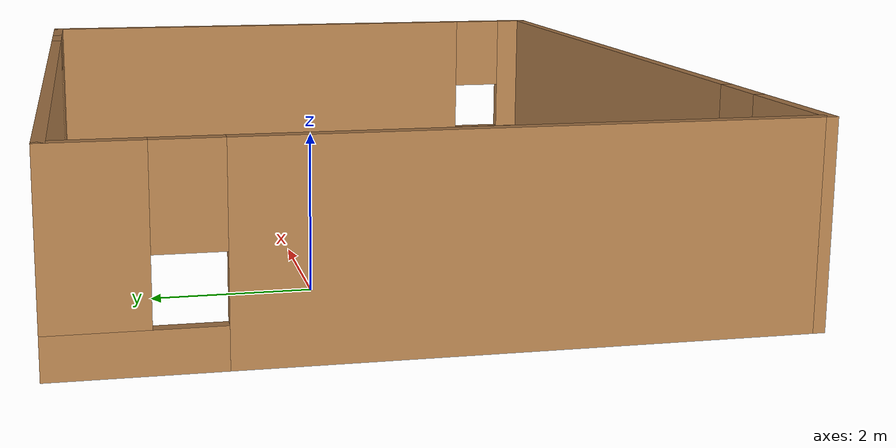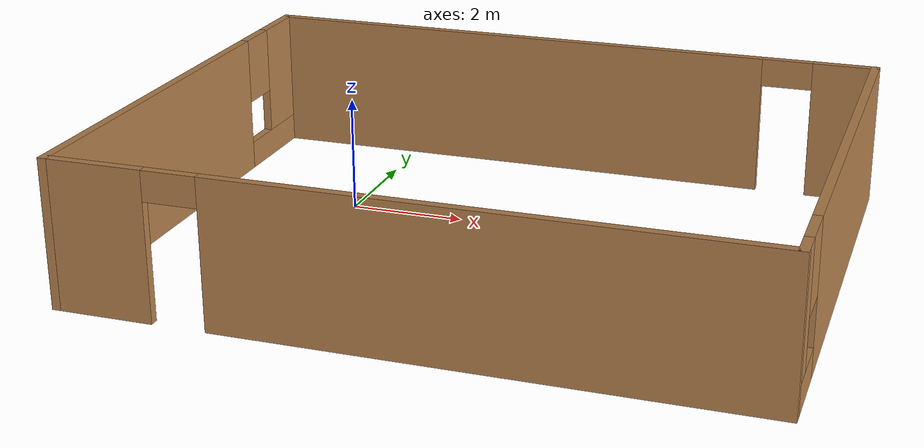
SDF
<?xml version='1.0'?>
<sdf version='1.7'>
  <model name='house'>
    <pose>2.975 -1.12 0 0 -0 0</pose>
    <link name='Wall_0'>
      <pose>-5.675 -0 0 0 -0 1.5708</pose>
      <visual name='Wall_0_Visual_0'>
        <pose>-0.979064 0 1.25 0 -0 0</pose>
        <geometry>
          <box>
            <size>6.79187 0.15 2.5</size>
          </box>
        </geometry>
        <material>
          <script>
            <uri>file://media/materials/scripts/gazebo.material</uri>
            <name>Gazebo/Wood</name>
          </script>
          <ambient>1 1 1 1</ambient>
        </material>
        <meta>
          <layer>0</layer>
        </meta>
      </visual>
      <collision name='Wall_0_Collision_0'>
        <geometry>
          <box>
            <size>6.79187 0.15 2.5</size>
          </box>
        </geometry>
        <pose>-0.979064 0 1.25 0 -0 0</pose>
      </collision>
      <visual name='Wall_0_Visual_1'>
        <pose>3.39594 0 0.25 0 -0 0</pose>
        <geometry>
          <box>
            <size>1.95813 0.15 0.5</size>
          </box>
        </geometry>
        <material>
          <script>
            <uri>file://media/materials/scripts/gazebo.material</uri>
            <name>Gazebo/Wood</name>
          </script>
          <ambient>1 1 1 1</ambient>
        </material>
        <meta>
          <layer>0</layer>
        </meta>
      </visual>
      <collision name='Wall_0_Collision_1'>
        <geometry>
          <box>
            <size>1.95813 0.15 0.5</size>
          </box>
        </geometry>
        <pose>3.39594 0 0.25 0 -0 0</pose>
      </collision>
      <visual name='Wall_0_Visual_2'>
        <pose>3.79594 0 1.5 0 -0 0</pose>
        <geometry>
          <box>
            <size>1.15813 0.15 2</size>
          </box>
        </geometry>
        <material>
          <script>
            <uri>file://media/materials/scripts/gazebo.material</uri>
            <name>Gazebo/Wood</name>
          </script>
          <ambient>1 1 1 1</ambient>
        </material>
        <meta>
          <layer>0</layer>
        </meta>
      </visual>
      <collision name='Wall_0_Collision_2'>
        <geometry>
          <box>
            <size>1.15813 0.15 2</size>
          </box>
        </geometry>
        <pose>3.79594 0 1.5 0 -0 0</pose>
      </collision>
      <visual name='Wall_0_Visual_3'>
        <pose>2.81687 0 1.9 0 -0 0</pose>
        <geometry>
          <box>
            <size>0.8 0.15 1.2</size>
          </box>
        </geometry>
        <material>
          <script>
            <uri>file://media/materials/scripts/gazebo.material</uri>
            <name>Gazebo/Wood</name>
          </script>
          <ambient>1 1 1 1</ambient>
        </material>
        <meta>
          <layer>0</layer>
        </meta>
      </visual>
      <collision name='Wall_0_Collision_3'>
        <geometry>
          <box>
            <size>0.8 0.15 1.2</size>
          </box>
        </geometry>
        <pose>2.81687 0 1.9 0 -0 0</pose>
      </collision>
    </link>
    <link name='Wall_1'>
      <pose>0 4.3 0 0 -0 0</pose>
      <visual name='Wall_1_Visual_0'>
        <pose>-1.03034 0 1.25 0 -0 0</pose>
        <geometry>
          <box>
            <size>9.43931 0.15 2.5</size>
          </box>
        </geometry>
        <material>
          <script>
            <uri>file://media/materials/scripts/gazebo.material</uri>
            <name>Gazebo/Wood</name>
          </script>
          <ambient>1 1 1 1</ambient>
        </material>
        <meta>
          <layer>0</layer>
        </meta>
      </visual>
      <collision name='Wall_1_Collision_0'>
        <geometry>
          <box>
            <size>9.43931 0.15 2.5</size>
          </box>
        </geometry>
        <pose>-1.03034 0 1.25 0 -0 0</pose>
      </collision>
      <visual name='Wall_1_Visual_1'>
        <pose>5.16966 0 1.25 0 -0 0</pose>
        <geometry>
          <box>
            <size>1.16069 0.15 2.5</size>
          </box>
        </geometry>
        <material>
          <script>
            <uri>file://media/materials/scripts/gazebo.material</uri>
            <name>Gazebo/Wood</name>
          </script>
          <ambient>1 1 1 1</ambient>
        </material>
        <meta>
          <layer>0</layer>
        </meta>
      </visual>
      <collision name='Wall_1_Collision_1'>
        <geometry>
          <box>
            <size>1.16069 0.15 2.5</size>
          </box>
        </geometry>
        <pose>5.16966 0 1.25 0 -0 0</pose>
      </collision>
      <visual name='Wall_1_Visual_2'>
        <pose>4.13931 0 2.25 0 -0 0</pose>
        <geometry>
          <box>
            <size>0.9 0.15 0.5</size>
          </box>
        </geometry>
        <material>
          <script>
            <uri>file://media/materials/scripts/gazebo.material</uri>
            <name>Gazebo/Wood</name>
          </script>
          <ambient>1 1 1 1</ambient>
        </material>
        <meta>
          <layer>0</layer>
        </meta>
      </visual>
      <collision name='Wall_1_Collision_2'>
        <geometry>
          <box>
            <size>0.9 0.15 0.5</size>
          </box>
        </geometry>
        <pose>4.13931 0 2.25 0 -0 0</pose>
      </collision>
    </link>
    <link name='Wall_2'>
      <pose>5.675 -0 0 0 -0 -1.5708</pose>
      <visual name='Wall_2_Visual_0'>
        <pose>-0.666158 0 1.25 0 -0 0</pose>
        <geometry>
          <box>
            <size>7.41768 0.15 2.5</size>
          </box>
        </geometry>
        <material>
          <script>
            <uri>file://media/materials/scripts/gazebo.material</uri>
            <name>Gazebo/Wood</name>
          </script>
          <ambient>1 1 1 1</ambient>
        </material>
        <meta>
          <layer>0</layer>
        </meta>
      </visual>
      <collision name='Wall_2_Collision_0'>
        <geometry>
          <box>
            <size>7.41768 0.15 2.5</size>
          </box>
        </geometry>
        <pose>-0.666158 0 1.25 0 -0 0</pose>
      </collision>
      <visual name='Wall_2_Visual_1'>
        <pose>3.70884 0 0.25 0 -0 0</pose>
        <geometry>
          <box>
            <size>1.33232 0.15 0.5</size>
          </box>
        </geometry>
        <material>
          <script>
            <uri>file://media/materials/scripts/gazebo.material</uri>
            <name>Gazebo/Wood</name>
          </script>
          <ambient>1 1 1 1</ambient>
        </material>
        <meta>
          <layer>0</layer>
        </meta>
      </visual>
      <collision name='Wall_2_Collision_1'>
        <geometry>
          <box>
            <size>1.33232 0.15 0.5</size>
          </box>
        </geometry>
        <pose>3.70884 0 0.25 0 -0 0</pose>
      </collision>
      <visual name='Wall_2_Visual_2'>
        <pose>4.10884 0 1.5 0 -0 0</pose>
        <geometry>
          <box>
            <size>0.532317 0.15 2</size>
          </box>
        </geometry>
        <material>
          <script>
            <uri>file://media/materials/scripts/gazebo.material</uri>
            <name>Gazebo/Wood</name>
          </script>
          <ambient>1 1 1 1</ambient>
        </material>
        <meta>
          <layer>0</layer>
        </meta>
      </visual>
      <collision name='Wall_2_Collision_2'>
        <geometry>
          <box>
            <size>0.532317 0.15 2</size>
          </box>
        </geometry>
        <pose>4.10884 0 1.5 0 -0 0</pose>
      </collision>
      <visual name='Wall_2_Visual_3'>
        <pose>3.44268 0 1.9 0 -0 0</pose>
        <geometry>
          <box>
            <size>0.8 0.15 1.2</size>
          </box>
        </geometry>
        <material>
          <script>
            <uri>file://media/materials/scripts/gazebo.material</uri>
            <name>Gazebo/Wood</name>
          </script>
          <ambient>1 1 1 1</ambient>
        </material>
        <meta>
          <layer>0</layer>
        </meta>
      </visual>
      <collision name='Wall_2_Collision_3'>
        <geometry>
          <box>
            <size>0.8 0.15 1.2</size>
          </box>
        </geometry>
        <pose>3.44268 0 1.9 0 -0 0</pose>
      </collision>
    </link>
    <link name='Wall_3'>
      <pose>0 -4.3 0 0 -0 3.14159</pose>
      <visual name='Wall_3_Visual_0'>
        <pose>-1.31661 0 1.25 0 -0 0</pose>
        <geometry>
          <box>
            <size>8.86678 0.15 2.5</size>
          </box>
        </geometry>
        <material>
          <script>
            <uri>file://media/materials/scripts/gazebo.material</uri>
            <name>Gazebo/Wood</name>
          </script>
          <ambient>1 1 1 1</ambient>
        </material>
        <meta>
          <layer>0</layer>
        </meta>
      </visual>
      <collision name='Wall_3_Collision_0'>
        <geometry>
          <box>
            <size>8.86678 0.15 2.5</size>
          </box>
        </geometry>
        <pose>-1.31661 0 1.25 0 -0 0</pose>
      </collision>
      <visual name='Wall_3_Visual_1'>
        <pose>4.88339 0 1.25 0 -0 0</pose>
        <geometry>
          <box>
            <size>1.73322 0.15 2.5</size>
          </box>
        </geometry>
        <material>
          <script>
            <uri>file://media/materials/scripts/gazebo.material</uri>
            <name>Gazebo/Wood</name>
          </script>
          <ambient>1 1 1 1</ambient>
        </material>
        <meta>
          <layer>0</layer>
        </meta>
      </visual>
      <collision name='Wall_3_Collision_1'>
        <geometry>
          <box>
            <size>1.73322 0.15 2.5</size>
          </box>
        </geometry>
        <pose>4.88339 0 1.25 0 -0 0</pose>
      </collision>
      <visual name='Wall_3_Visual_2'>
        <pose>3.56678 0 2.25 0 -0 0</pose>
        <geometry>
          <box>
            <size>0.9 0.15 0.5</size>
          </box>
        </geometry>
        <material>
          <script>
            <uri>file://media/materials/scripts/gazebo.material</uri>
            <name>Gazebo/Wood</name>
          </script>
          <ambient>1 1 1 1</ambient>
        </material>
        <meta>
          <layer>0</layer>
        </meta>
      </visual>
      <collision name='Wall_3_Collision_2'>
        <geometry>
          <box>
            <size>0.9 0.15 0.5</size>
          </box>
        </geometry>
        <pose>3.56678 0 2.25 0 -0 0</pose>
      </collision>
    </link>
    <static>1</static>
  </model>
</sdf>
